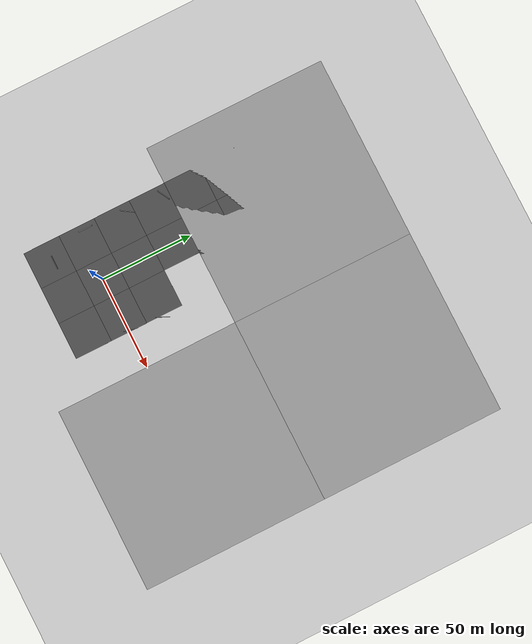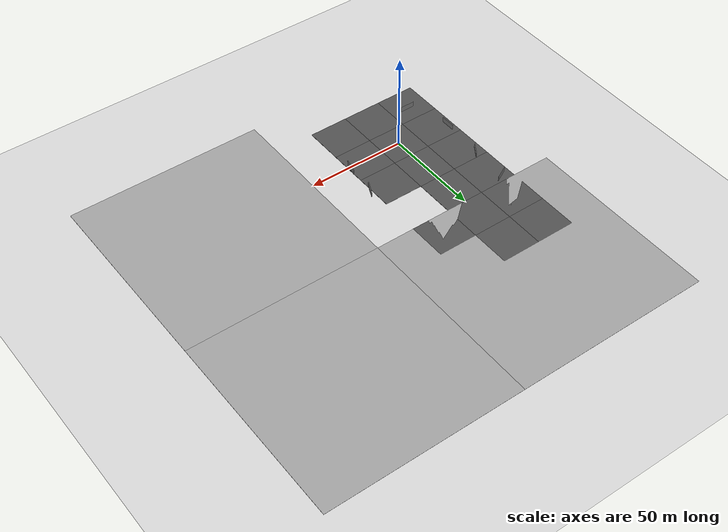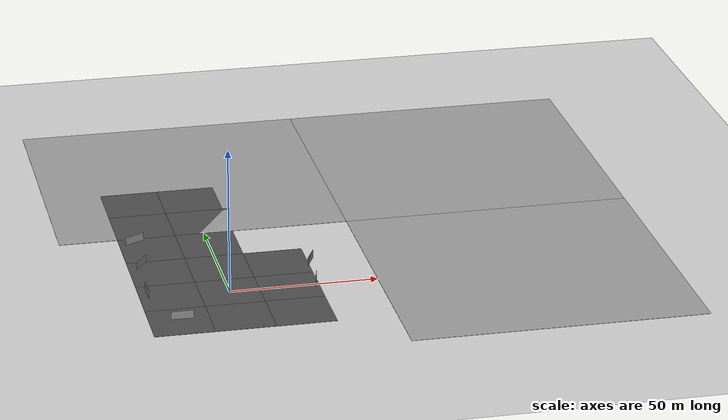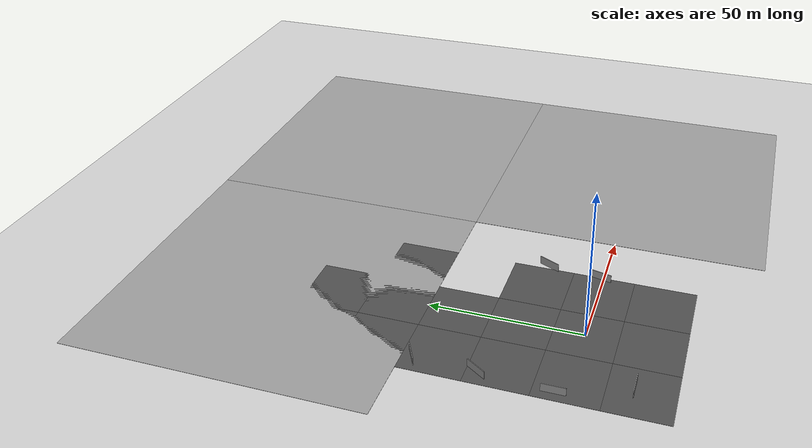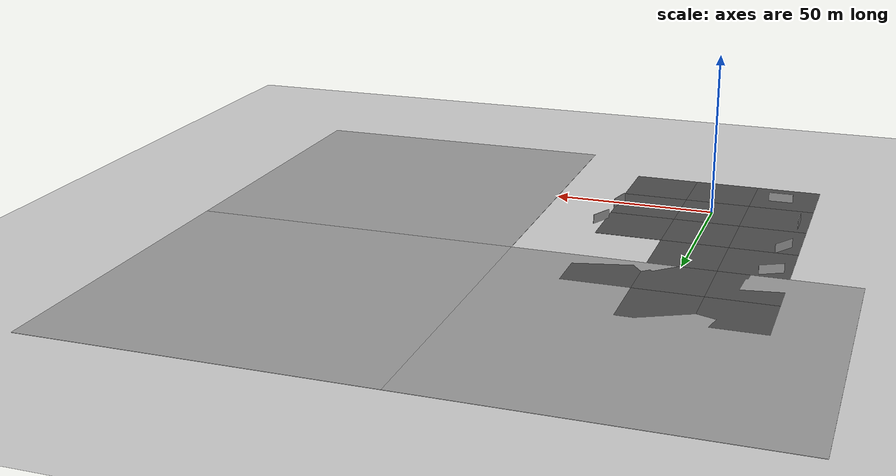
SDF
<sdf version="1.6">
 <world name="default">
  <light name="sun" type="directional">
   <pose>0 0 10 0 -0 0</pose>
   <diffuse>0.8 0.8 0.8 1</diffuse>
   <specular>0.2 0.2 0.2 1</specular>
   <attenuation>
    <range>1000</range>
    <constant>0.9</constant>
    <linear>0.01</linear>
    <quadratic>0.001</quadratic>
   </attenuation>
   <direction>-0.5 0.1 -0.9</direction>
  </light>
  <model name="ground_plane">
   <static>1</static>
   <link name="link">
    <collision name="collision">
     <geometry><plane><normal>0 0 1</normal><size>100 100</size></plane></geometry>
     <surface><friction><ode><mu>100</mu><mu2>50</mu2></ode></friction></surface>
    </collision>
    <visual name="visual">
     <cast_shadows>0</cast_shadows>
     <geometry><plane><normal>0 0 1</normal><size>100 100</size></plane></geometry>
     <material>
      <script><uri>file://media/materials/scripts/gazebo.material</uri><name>Gazebo/Grey</name></script>
     </material>
    </visual>
    <velocity_decay><linear>0</linear><angular>0</angular></velocity_decay>
   </link>
  </model>
  <physics name="default_physics" default="0" type="ode">
   <max_step_size>0.01</max_step_size>
   <real_time_factor>1</real_time_factor>
   <real_time_update_rate>100</real_time_update_rate>
  </physics>
  <scene><ambient>0.4 0.4 0.4 1</ambient><background>0.7 0.7 0.7 1</background><shadows>1</shadows></scene>
  <gravity>0 0 -9.8</gravity>
  <magnetic_field>6e-06 2.3e-05 -4.2e-05</magnetic_field>
  <atmosphere type="adiabatic"/>
  <spherical_coordinates>
   <surface_model>EARTH_WGS84</surface_model>
   <latitude_deg>0</latitude_deg>
   <longitude_deg>0</longitude_deg>
   <elevation>0</elevation>
   <heading_deg>0</heading_deg>
  </spherical_coordinates>
  <model name="ground_plane_0">
   <static>1</static>
   <link name="link">
    <collision name="collision">
     <geometry><plane><normal>0 0 1</normal><size>100 100</size></plane></geometry>
     <surface><friction><ode><mu>100</mu><mu2>50</mu2></ode></friction></surface>
    </collision>
    <visual name="visual">
     <cast_shadows>0</cast_shadows>
     <geometry><plane><normal>0 0 1</normal><size>100 100</size></plane></geometry>
     <material>
      <script><uri>file://media/materials/scripts/gazebo.material</uri><name>Gazebo/Grey</name></script>
     </material>
    </visual>
   </link>
   <pose>0 100 0 0 -0 0</pose>
  </model>
  <model name="ground_plane_1">
   <static>1</static>
   <link name="link">
    <collision name="collision">
     <geometry><plane><normal>0 0 1</normal><size>100 100</size></plane></geometry>
     <surface><friction><ode><mu>100</mu><mu2>50</mu2></ode></friction></surface>
    </collision>
    <visual name="visual">
     <cast_shadows>0</cast_shadows>
     <geometry><plane><normal>0 0 1</normal><size>100 100</size></plane></geometry>
     <material>
      <script><uri>file://media/materials/scripts/gazebo.material</uri><name>Gazebo/Grey</name></script>
     </material>
    </visual>
   </link>
   <pose>100 0 0 0 -0 0</pose>
  </model>
  <model name="ground_plane_2">
   <static>1</static>
   <link name="link">
    <collision name="collision">
     <geometry><plane><normal>0 0 1</normal><size>100 100</size></plane></geometry>
     <surface><friction><ode><mu>100</mu><mu2>50</mu2></ode></friction></surface>
    </collision>
    <visual name="visual">
     <cast_shadows>0</cast_shadows>
     <geometry><plane><normal>0 0 1</normal><size>100 100</size></plane></geometry>
     <material>
      <script><uri>file://media/materials/scripts/gazebo.material</uri><name>Gazebo/Grey</name></script>
     </material>
    </visual>
   </link>
   <pose>100 100 0 0 -0 0</pose>
  </model>
  <model name="asphalt_plane_0">
   <static>1</static>
   <link name="link">
    <collision name="collision"><geometry><box><size>20 20 0.1</size></box></geometry></collision>
    <visual name="visual">
     <cast_shadows>0</cast_shadows>
     <geometry><box><size>20 20 0.1</size></box></geometry>
     <material>
      <script>
       <uri>model://asphalt_plane/materials/scripts</uri>
       <uri>model://asphalt_plane/materials/textures</uri>
       <name>vrc/asphalt</name>
      </script>
     </material>
    </visual>
   </link>
  </model>
  <model name="asphalt_plane_1">
   <static>1</static>
   <link name="link">
    <collision name="collision"><geometry><box><size>20 20 0.1</size></box></geometry></collision>
    <visual name="visual">
     <cast_shadows>0</cast_shadows>
     <geometry><box><size>20 20 0.1</size></box></geometry>
     <material>
      <script>
       <uri>model://asphalt_plane/materials/scripts</uri>
       <uri>model://asphalt_plane/materials/textures</uri>
       <name>vrc/asphalt</name>
      </script>
     </material>
    </visual>
   </link>
   <pose>0 20 0 0 -0 0</pose>
  </model>
  <model name="asphalt_plane_2">
   <static>1</static>
   <link name="link">
    <collision name="collision"><geometry><box><size>20 20 0.1</size></box></geometry></collision>
    <visual name="visual">
     <cast_shadows>0</cast_shadows>
     <geometry><box><size>20 20 0.1</size></box></geometry>
     <material>
      <script>
       <uri>model://asphalt_plane/materials/scripts</uri>
       <uri>model://asphalt_plane/materials/textures</uri>
       <name>vrc/asphalt</name>
      </script>
     </material>
    </visual>
   </link>
   <pose>0 40 0 0 -0 0</pose>
  </model>
  <model name="asphalt_plane_3">
   <static>1</static>
   <link name="link">
    <collision name="collision"><geometry><box><size>20 20 0.1</size></box></geometry></collision>
    <visual name="visual">
     <cast_shadows>0</cast_shadows>
     <geometry><box><size>20 20 0.1</size></box></geometry>
     <material>
      <script>
       <uri>model://asphalt_plane/materials/scripts</uri>
       <uri>model://asphalt_plane/materials/textures</uri>
       <name>vrc/asphalt</name>
      </script>
     </material>
    </visual>
   </link>
   <pose>0 60 0 0 -0 0</pose>
  </model>
  <model name="asphalt_plane_4">
   <static>1</static>
   <link name="link">
    <collision name="collision"><geometry><box><size>20 20 0.1</size></box></geometry></collision>
    <visual name="visual">
     <cast_shadows>0</cast_shadows>
     <geometry><box><size>20 20 0.1</size></box></geometry>
     <material>
      <script>
       <uri>model://asphalt_plane/materials/scripts</uri>
       <uri>model://asphalt_plane/materials/textures</uri>
       <name>vrc/asphalt</name>
      </script>
     </material>
    </visual>
   </link>
   <pose>0 80 0 0 -0 0</pose>
  </model>
  <model name="asphalt_plane_2_clone_0">
   <static>1</static>
   <link name="link">
    <collision name="collision"><geometry><box><size>20 20 0.1</size></box></geometry></collision>
    <visual name="visual">
     <cast_shadows>0</cast_shadows>
     <geometry><box><size>20 20 0.1</size></box></geometry>
     <material>
      <script>
       <uri>model://asphalt_plane/materials/scripts</uri>
       <uri>model://asphalt_plane/materials/textures</uri>
       <name>vrc/asphalt</name>
      </script>
     </material>
    </visual>
   </link>
   <pose>20 20 0 0 -0 0</pose>
  </model>
  <model name="asphalt_plane_2_clone_1">
   <static>1</static>
   <link name="link">
    <collision name="collision"><geometry><box><size>20 20 0.1</size></box></geometry></collision>
    <visual name="visual">
     <cast_shadows>0</cast_shadows>
     <geometry><box><size>20 20 0.1</size></box></geometry>
     <material>
      <script>
       <uri>model://asphalt_plane/materials/scripts</uri>
       <uri>model://asphalt_plane/materials/textures</uri>
       <name>vrc/asphalt</name>
      </script>
     </material>
    </visual>
   </link>
   <pose>20 0 0 0 -0 0</pose>
  </model>
  <model name="asphalt_plane_2_clone_2">
   <static>1</static>
   <link name="link">
    <collision name="collision"><geometry><box><size>20 20 0.1</size></box></geometry></collision>
    <visual name="visual">
     <cast_shadows>0</cast_shadows>
     <geometry><box><size>20 20 0.1</size></box></geometry>
     <material>
      <script>
       <uri>model://asphalt_plane/materials/scripts</uri>
       <uri>model://asphalt_plane/materials/textures</uri>
       <name>vrc/asphalt</name>
      </script>
     </material>
    </visual>
   </link>
   <pose>20 60 0 0 -0 0</pose>
  </model>
  <model name="asphalt_plane_2_clone_4">
   <static>1</static>
   <link name="link">
    <collision name="collision"><geometry><box><size>20 20 0.1</size></box></geometry></collision>
    <visual name="visual">
     <cast_shadows>0</cast_shadows>
     <geometry><box><size>20 20 0.1</size></box></geometry>
     <material>
      <script>
       <uri>model://asphalt_plane/materials/scripts</uri>
       <uri>model://asphalt_plane/materials/textures</uri>
       <name>vrc/asphalt</name>
      </script>
     </material>
    </visual>
   </link>
   <pose>-20 0 0 0 -0 0</pose>
  </model>
  <model name="asphalt_plane_2_clone_5">
   <static>1</static>
   <link name="link">
    <collision name="collision"><geometry><box><size>20 20 0.1</size></box></geometry></collision>
    <visual name="visual">
     <cast_shadows>0</cast_shadows>
     <geometry><box><size>20 20 0.1</size></box></geometry>
     <material>
      <script>
       <uri>model://asphalt_plane/materials/scripts</uri>
       <uri>model://asphalt_plane/materials/textures</uri>
       <name>vrc/asphalt</name>
      </script>
     </material>
    </visual>
   </link>
   <pose>-20 20 0 0 -0 0</pose>
  </model>
  <model name="asphalt_plane_2_clone_6">
   <static>1</static>
   <link name="link">
    <collision name="collision"><geometry><box><size>20 20 0.1</size></box></geometry></collision>
    <visual name="visual">
     <cast_shadows>0</cast_shadows>
     <geometry><box><size>20 20 0.1</size></box></geometry>
     <material>
      <script>
       <uri>model://asphalt_plane/materials/scripts</uri>
       <uri>model://asphalt_plane/materials/textures</uri>
       <name>vrc/asphalt</name>
      </script>
     </material>
    </visual>
   </link>
   <pose>-20 40 0 0 -0 0</pose>
  </model>
  <model name="asphalt_plane_2_clone_7">
   <static>1</static>
   <link name="link">
    <collision name="collision"><geometry><box><size>20 20 0.1</size></box></geometry></collision>
    <visual name="visual">
     <cast_shadows>0</cast_shadows>
     <geometry><box><size>20 20 0.1</size></box></geometry>
     <material>
      <script>
       <uri>model://asphalt_plane/materials/scripts</uri>
       <uri>model://asphalt_plane/materials/textures</uri>
       <name>vrc/asphalt</name>
      </script>
     </material>
    </visual>
   </link>
   <pose>-20 60 0 0 -0 0</pose>
  </model>
  <model name="asphalt_plane_2_clone_8">
   <static>1</static>
   <link name="link">
    <collision name="collision"><geometry><box><size>20 20 0.1</size></box></geometry></collision>
    <visual name="visual">
     <cast_shadows>0</cast_shadows>
     <geometry><box><size>20 20 0.1</size></box></geometry>
     <material>
      <script>
       <uri>model://asphalt_plane/materials/scripts</uri>
       <uri>model://asphalt_plane/materials/textures</uri>
       <name>vrc/asphalt</name>
      </script>
     </material>
    </visual>
   </link>
   <pose>-20 80 0 0 -0 0</pose>
  </model>
  <model name="asphalt_plane_2_clone_9">
   <static>1</static>
   <link name="link">
    <collision name="collision"><geometry><box><size>20 20 0.1</size></box></geometry></collision>
    <visual name="visual">
     <cast_shadows>0</cast_shadows>
     <geometry><box><size>20 20 0.1</size></box></geometry>
     <material>
      <script>
       <uri>model://asphalt_plane/materials/scripts</uri>
       <uri>model://asphalt_plane/materials/textures</uri>
       <name>vrc/asphalt</name>
      </script>
     </material>
    </visual>
   </link>
   <pose>-20 -20 0 0 -0 0</pose>
  </model>
  <model name="asphalt_plane_2_clone_10">
   <static>1</static>
   <link name="link">
    <collision name="collision"><geometry><box><size>20 20 0.1</size></box></geometry></collision>
    <visual name="visual">
     <cast_shadows>0</cast_shadows>
     <geometry><box><size>20 20 0.1</size></box></geometry>
     <material>
      <script>
       <uri>model://asphalt_plane/materials/scripts</uri>
       <uri>model://asphalt_plane/materials/textures</uri>
       <name>vrc/asphalt</name>
      </script>
     </material>
    </visual>
   </link>
   <pose>0 -20 0 0 -0 0</pose>
  </model>
  <model name="asphalt_plane_2_clone_11">
   <static>1</static>
   <link name="link">
    <collision name="collision"><geometry><box><size>20 20 0.1</size></box></geometry></collision>
    <visual name="visual">
     <cast_shadows>0</cast_shadows>
     <geometry><box><size>20 20 0.1</size></box></geometry>
     <material>
      <script>
       <uri>model://asphalt_plane/materials/scripts</uri>
       <uri>model://asphalt_plane/materials/textures</uri>
       <name>vrc/asphalt</name>
      </script>
     </material>
    </visual>
   </link>
   <pose>20 -20 0 0 -0 0</pose>
  </model>
  <model name="grey_wall">
   <static>1</static>
   <link name="link">
    <pose>0 0 1.4 0 -0 0</pose>
    <collision name="collision"><geometry><box><size>7.5 0.2 2.8</size></box></geometry></collision>
    <visual name="visual">
     <cast_shadows>0</cast_shadows>
     <geometry><box><size>7.5 0.2 2.8</size></box></geometry>
     <material>
      <script>
       <uri>model://grey_wall/materials/scripts</uri>
       <uri>model://grey_wall/materials/textures</uri>
       <name>vrc/grey_wall</name>
      </script>
     </material>
    </visual>
   </link>
   <pose>-18.8462 -17.8785 0 0 -0 0</pose>
  </model>
  <model name="grey_wall_0">
   <static>1</static>
   <link name="link">
    <pose>0 0 1.4 0 -0 0</pose>
    <collision name="collision"><geometry><box><size>7.5 0.2 2.8</size></box></geometry></collision>
    <visual name="visual">
     <cast_shadows>0</cast_shadows>
     <geometry><box><size>7.5 0.2 2.8</size></box></geometry>
     <material>
      <script>
       <uri>model://grey_wall/materials/scripts</uri>
       <uri>model://grey_wall/materials/textures</uri>
       <name>vrc/grey_wall</name>
      </script>
     </material>
    </visual>
   </link>
   <pose>-27.0506 3.78338 0 0 -0 1.57</pose>
  </model>
  <model name="grey_wall_1">
   <static>1</static>
   <link name="link">
    <pose>0 0 1.4 0 -0 0</pose>
    <collision name="collision"><geometry><box><size>7.5 0.2 2.8</size></box></geometry></collision>
    <visual name="visual">
     <cast_shadows>0</cast_shadows>
     <geometry><box><size>7.5 0.2 2.8</size></box></geometry>
     <material>
      <script>
       <uri>model://grey_wall/materials/scripts</uri>
       <uri>model://grey_wall/materials/textures</uri>
       <name>vrc/grey_wall</name>
      </script>
     </material>
    </visual>
   </link>
   <pose>-25.3089 26.9263 0 0 -0 1</pose>
  </model>
  <model name="grey_wall_2">
   <static>1</static>
   <link name="link">
    <pose>0 0 1.4 0 -0 0</pose>
    <collision name="collision"><geometry><box><size>7.5 0.2 2.8</size></box></geometry></collision>
    <visual name="visual">
     <cast_shadows>0</cast_shadows>
     <geometry><box><size>7.5 0.2 2.8</size></box></geometry>
     <material>
      <script>
       <uri>model://grey_wall/materials/scripts</uri>
       <uri>model://grey_wall/materials/textures</uri>
       <name>vrc/grey_wall</name>
      </script>
     </material>
    </visual>
   </link>
   <pose>-24.4905 46.9263 0 0 -0 0.5</pose>
  </model>
  <model name="grey_wall_3">
   <static>1</static>
   <link name="link">
    <pose>0 0 1.4 0 -0 0</pose>
    <collision name="collision"><geometry><box><size>7.5 0.2 2.8</size></box></geometry></collision>
    <visual name="visual">
     <cast_shadows>0</cast_shadows>
     <geometry><box><size>7.5 0.2 2.8</size></box></geometry>
     <material>
      <script>
       <uri>model://grey_wall/materials/scripts</uri>
       <uri>model://grey_wall/materials/textures</uri>
       <name>vrc/grey_wall</name>
      </script>
     </material>
    </visual>
   </link>
   <pose>29.3288 1.2756 0 0 0 -1.8</pose>
  </model>
  <model name="grey_wall_4">
   <static>1</static>
   <link name="link">
    <pose>0 0 1.4 0 -0 0</pose>
    <collision name="collision"><geometry><box><size>7.5 0.2 2.8</size></box></geometry></collision>
    <visual name="visual">
     <cast_shadows>0</cast_shadows>
     <geometry><box><size>7.5 0.2 2.8</size></box></geometry>
     <material>
      <script>
       <uri>model://grey_wall/materials/scripts</uri>
       <uri>model://grey_wall/materials/textures</uri>
       <name>vrc/grey_wall</name>
      </script>
     </material>
    </visual>
   </link>
   <pose>30.9681 18.6421 0 0 0 -2</pose>
  </model>
 </world>
</sdf>
